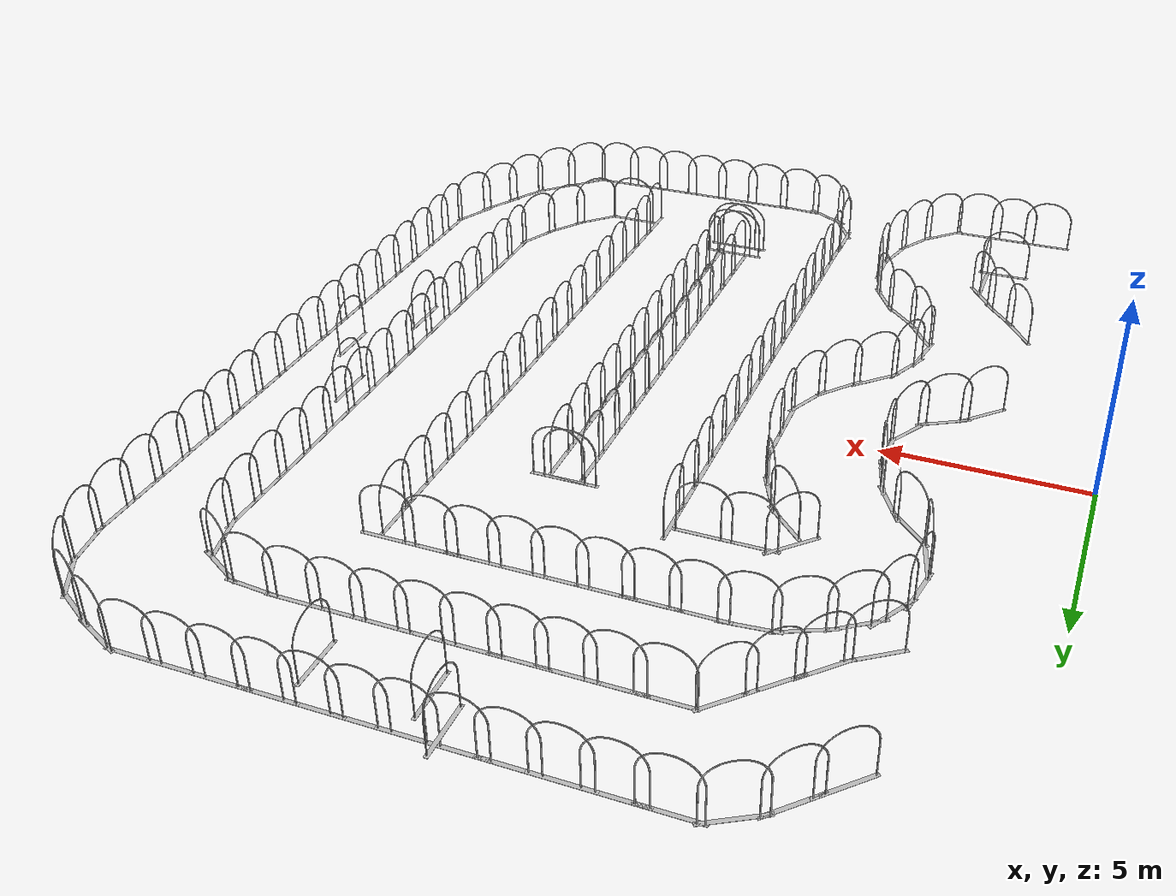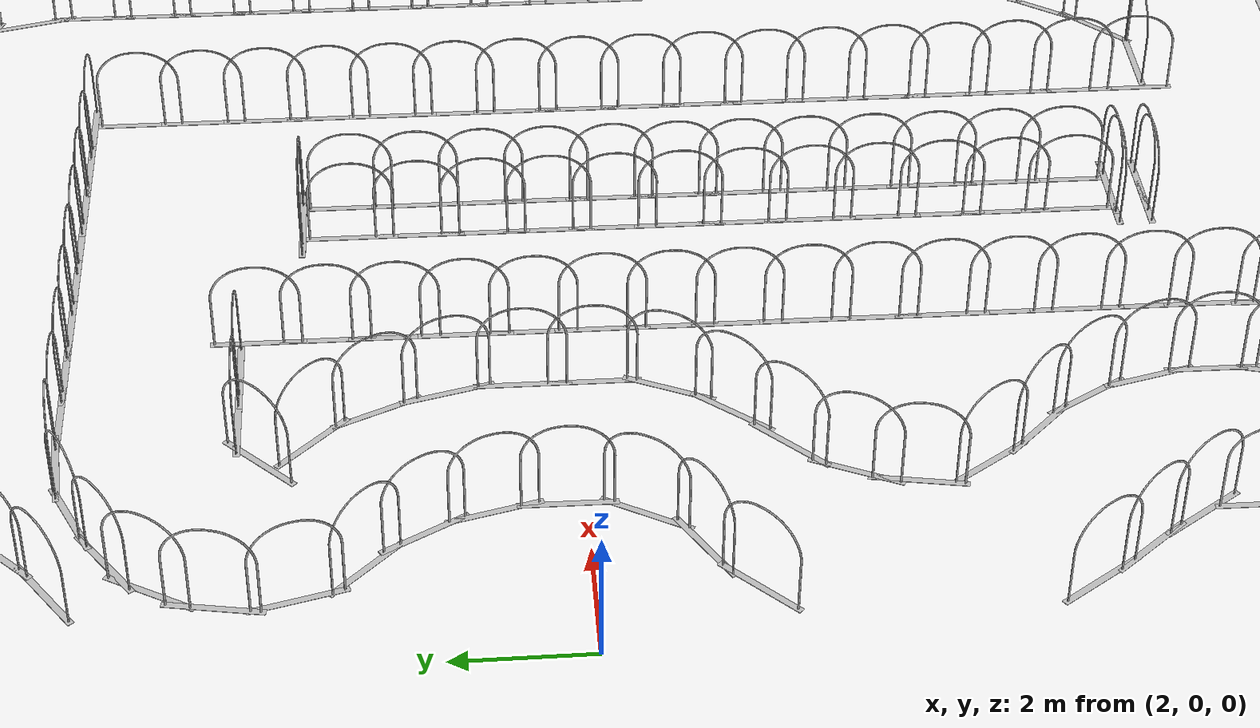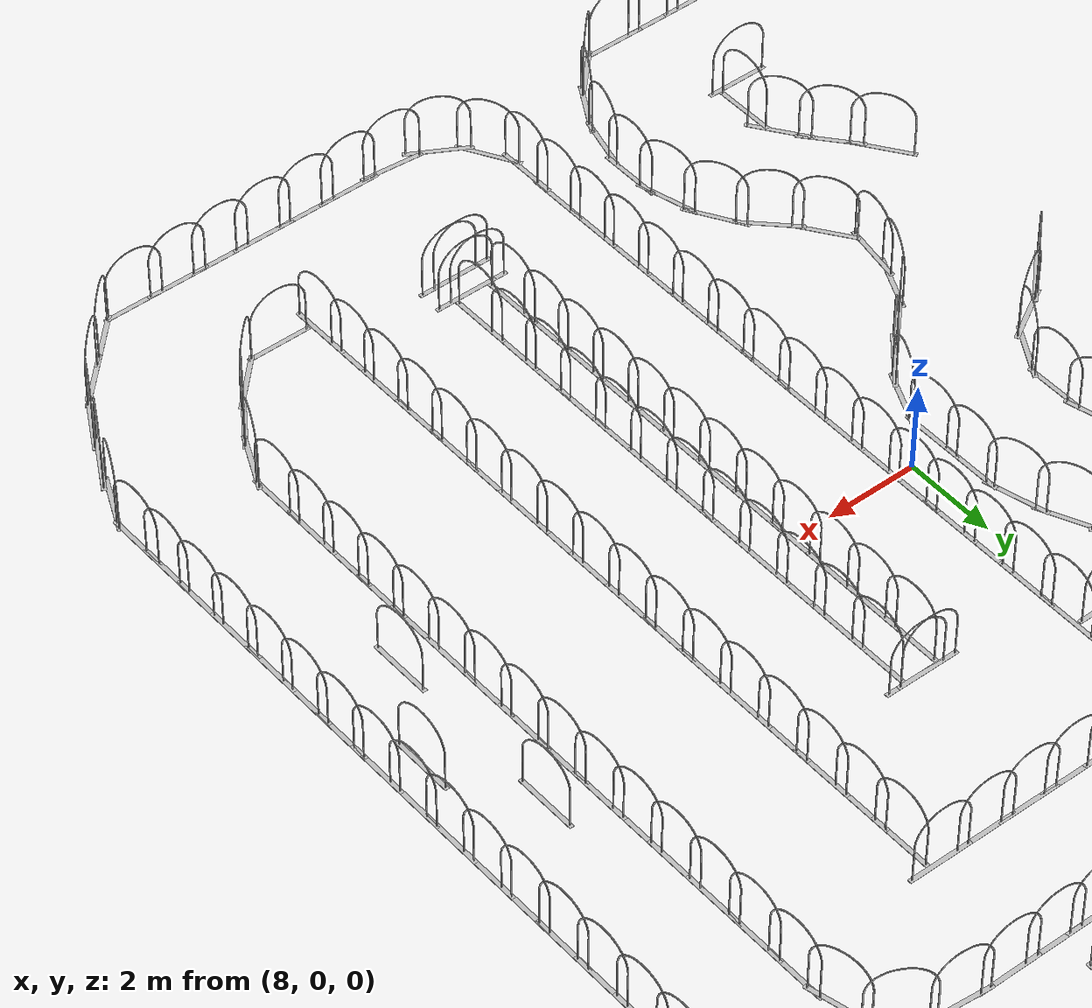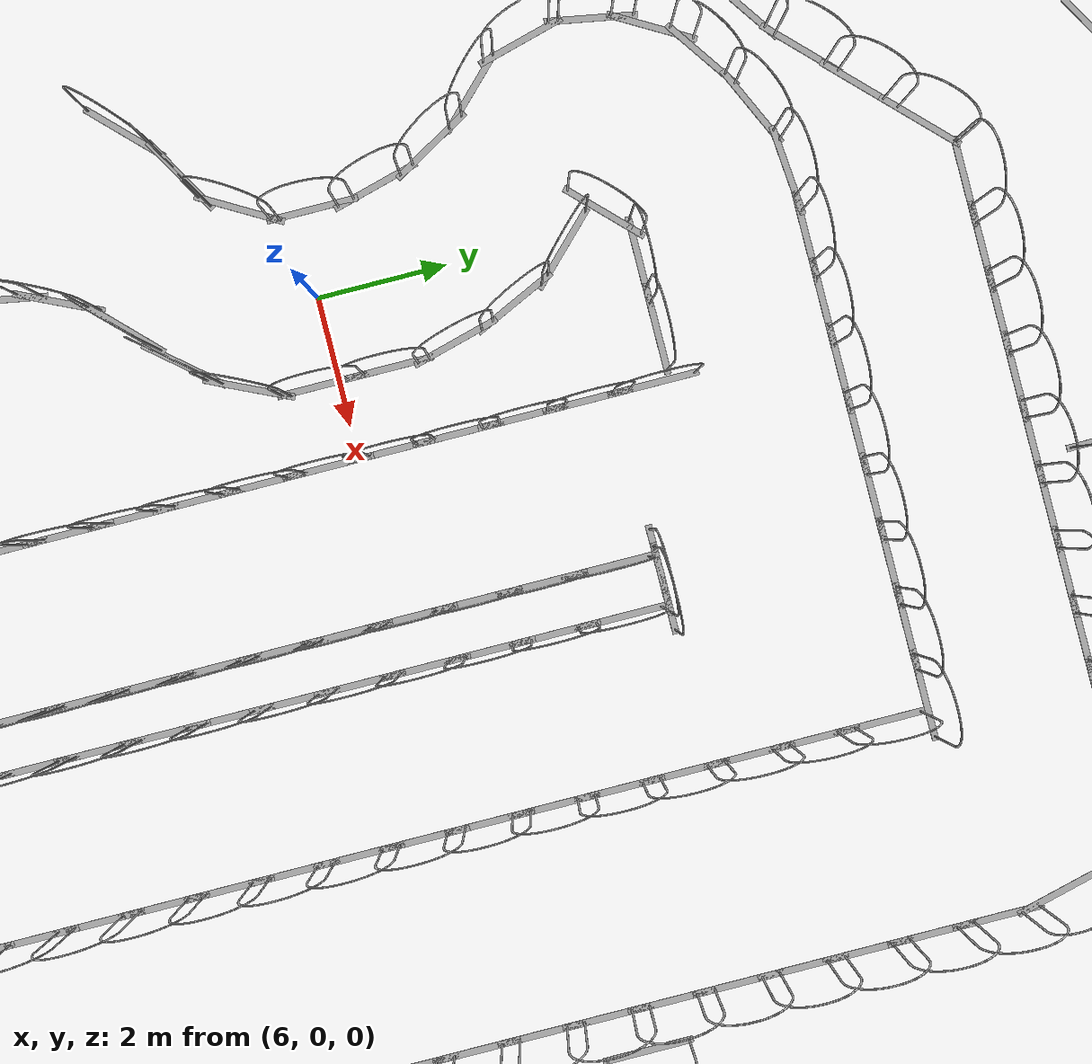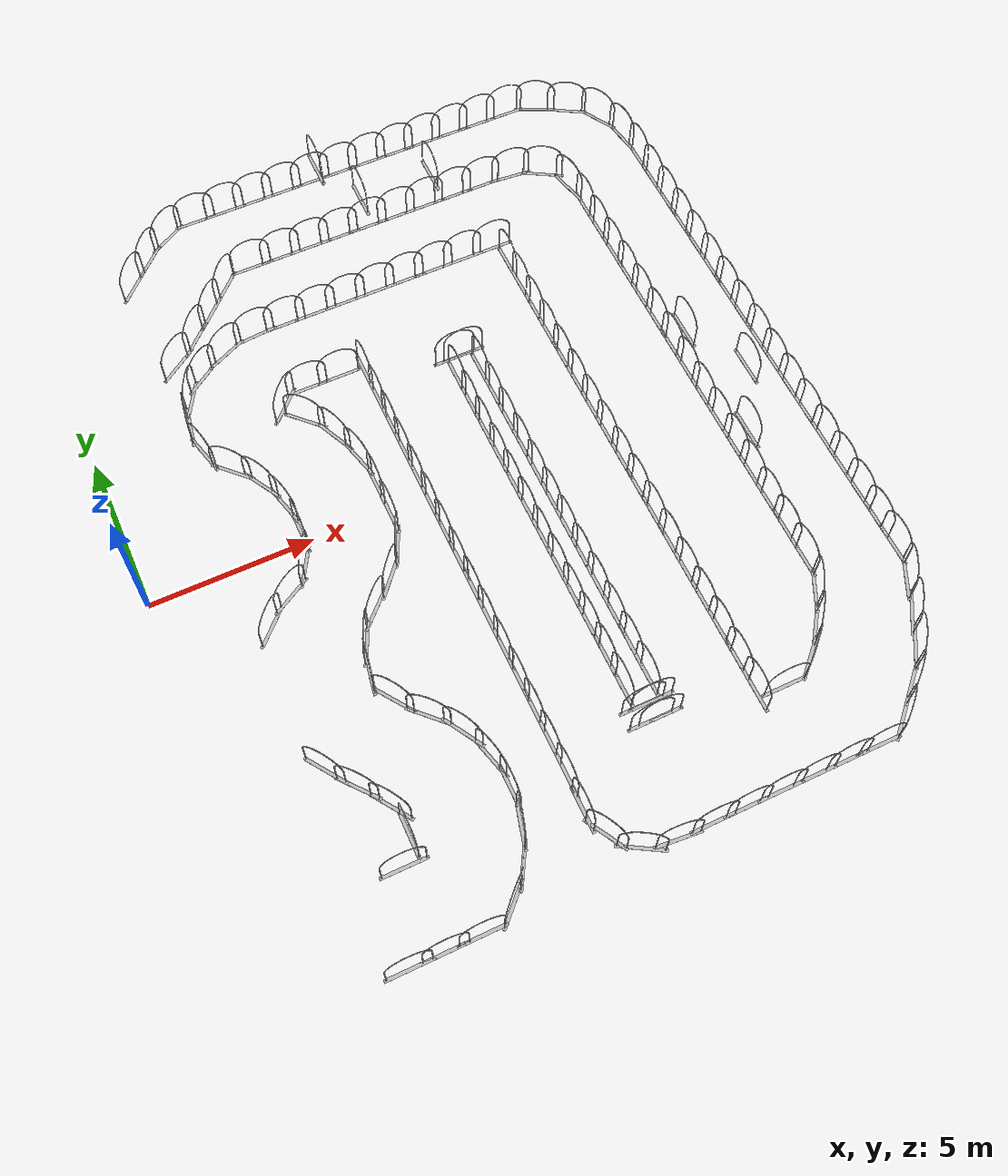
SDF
<sdf version="1.6">
 <world name="racetrack_world">
  <include>
   <name>model_2</name>
   <uri>../models/straw_bale/model.sdf</uri>
   <pose>3.1374999999999993 10.65 0.175 0 0 0.7853981633974483</pose>
  </include>
  <include>
   <name>model_3</name>
   <uri>../models/straw_bale/model.sdf</uri>
   <pose>3.862499999999997 11.375 0.175 0 0 0.7853981633974483</pose>
  </include>
  <include>
   <name>model_4</name>
   <uri>../models/straw_bale/model.sdf</uri>
   <pose>4.712499999999999 12.025 0.175 0 0 0.5235987755982988</pose>
  </include>
  <include>
   <name>model_5</name>
   <uri>../models/straw_bale/model.sdf</uri>
   <pose>5.762499999999999 12.3 0.175 0 0 -0.0</pose>
  </include>
  <include>
   <name>model_6</name>
   <uri>../models/straw_bale/model.sdf</uri>
   <pose>6.762499999999999 12.3 0.175 0 0 -0.0</pose>
  </include>
  <include>
   <name>model_7</name>
   <uri>../models/straw_bale/model.sdf</uri>
   <pose>7.762499999999999 12.3 0.175 0 0 -0.0</pose>
  </include>
  <include>
   <name>model_8</name>
   <uri>../models/straw_bale/model.sdf</uri>
   <pose>8.7625 12.3 0.175 0 0 -0.0</pose>
  </include>
  <include>
   <name>model_9</name>
   <uri>../models/straw_bale/model.sdf</uri>
   <pose>9.7625 12.3 0.175 0 0 -0.0</pose>
  </include>
  <include>
   <name>model_10</name>
   <uri>../models/straw_bale/model.sdf</uri>
   <pose>10.7625 12.3 0.175 0 0 -0.0</pose>
  </include>
  <include>
   <name>model_11</name>
   <uri>../models/straw_bale/model.sdf</uri>
   <pose>11.7625 12.3 0.175 0 0 -0.0</pose>
  </include>
  <include>
   <name>model_12</name>
   <uri>../models/straw_bale/model.sdf</uri>
   <pose>12.762499999999996 12.3 0.175 0 0 -0.0</pose>
  </include>
  <include>
   <name>model_13</name>
   <uri>../models/straw_bale/model.sdf</uri>
   <pose>13.762499999999996 12.3 0.175 0 0 -0.0</pose>
  </include>
  <include>
   <name>model_14</name>
   <uri>../models/straw_bale/model.sdf</uri>
   <pose>14.762499999999996 12.3 0.175 0 0 -0.0</pose>
  </include>
  <include>
   <name>model_15</name>
   <uri>../models/straw_bale/model.sdf</uri>
   <pose>15.762499999999996 12.3 0.175 0 0 -0.0</pose>
  </include>
  <include>
   <name>model_16</name>
   <uri>../models/straw_bale/model.sdf</uri>
   <pose>16.762499999999996 12.3 0.175 0 0 -0.0</pose>
  </include>
  <include>
   <name>model_17</name>
   <uri>../models/straw_bale/model.sdf</uri>
   <pose>17.8375 12.075 0.175 0 0 -0.4363323129985824</pose>
  </include>
  <include>
   <name>model_18</name>
   <uri>../models/straw_bale/model.sdf</uri>
   <pose>18.762500000000003 11.575000000000001 0.175 0 0 -0.5235987755982988</pose>
  </include>
  <include>
   <name>model_19</name>
   <uri>../models/straw_bale/model.sdf</uri>
   <pose>19.5625 10.8 0.175 0 0 -1.0471975511965976</pose>
  </include>
  <include>
   <name>model_21</name>
   <uri>../models/straw_bale/model.sdf</uri>
   <pose>19.9375 9.775 0.175 0 0 -1.3962634015954636</pose>
  </include>
  <include>
   <name>model_22</name>
   <uri>../models/straw_bale/model.sdf</uri>
   <pose>20.0375 8.725 0.175 0 0 -1.5707963267948966</pose>
  </include>
  <include>
   <name>model_23</name>
   <uri>../models/straw_bale/model.sdf</uri>
   <pose>20.0375 7.699999999999999 0.175 0 0 -1.5707963267948966</pose>
  </include>
  <include>
   <name>model_24</name>
   <uri>../models/straw_bale/model.sdf</uri>
   <pose>20.0375 6.699999999999999 0.175 0 0 -1.5707963267948966</pose>
  </include>
  <include>
   <name>model_25</name>
   <uri>../models/straw_bale/model.sdf</uri>
   <pose>20.0375 5.699999999999999 0.175 0 0 -1.5707963267948966</pose>
  </include>
  <include>
   <name>model_26</name>
   <uri>../models/straw_bale/model.sdf</uri>
   <pose>20.0375 4.699999999999999 0.175 0 0 -1.5707963267948966</pose>
  </include>
  <include>
   <name>model_27</name>
   <uri>../models/straw_bale/model.sdf</uri>
   <pose>20.0375 3.6999999999999993 0.175 0 0 -1.5707963267948966</pose>
  </include>
  <include>
   <name>model_28</name>
   <uri>../models/straw_bale/model.sdf</uri>
   <pose>20.0375 2.6999999999999993 0.175 0 0 -1.5707963267948966</pose>
  </include>
  <include>
   <name>model_29</name>
   <uri>../models/straw_bale/model.sdf</uri>
   <pose>20.0375 1.6999999999999993 0.175 0 0 -1.5707963267948966</pose>
  </include>
  <include>
   <name>model_30</name>
   <uri>../models/straw_bale/model.sdf</uri>
   <pose>20.0375 0.6999999999999993 0.175 0 0 -1.5707963267948966</pose>
  </include>
  <include>
   <name>model_31</name>
   <uri>../models/straw_bale/model.sdf</uri>
   <pose>20.0375 -0.3000000000000007 0.175 0 0 -1.5707963267948966</pose>
  </include>
  <include>
   <name>model_32</name>
   <uri>../models/straw_bale/model.sdf</uri>
   <pose>20.0375 -1.3000000000000007 0.175 0 0 -1.5707963267948966</pose>
  </include>
  <include>
   <name>model_33</name>
   <uri>../models/straw_bale/model.sdf</uri>
   <pose>20.0375 -2.3000000000000007 0.175 0 0 -1.5707963267948966</pose>
  </include>
  <include>
   <name>model_34</name>
   <uri>../models/straw_bale/model.sdf</uri>
   <pose>20.0375 -3.3000000000000007 0.175 0 0 -1.5707963267948966</pose>
  </include>
  <include>
   <name>model_35</name>
   <uri>../models/straw_bale/model.sdf</uri>
   <pose>20.0375 -4.300000000000001 0.175 0 0 -1.5707963267948966</pose>
  </include>
  <include>
   <name>model_36</name>
   <uri>../models/straw_bale/model.sdf</uri>
   <pose>20.0375 -5.300000000000001 0.175 0 0 -1.5707963267948966</pose>
  </include>
  <include>
   <name>model_37</name>
   <uri>../models/straw_bale/model.sdf</uri>
   <pose>20.0375 -6.300000000000001 0.175 0 0 -1.5707963267948966</pose>
  </include>
  <include>
   <name>model_38</name>
   <uri>../models/straw_bale/model.sdf</uri>
   <pose>20.0375 -7.199999999999999 0.175 0 0 -1.5707963267948966</pose>
  </include>
  <include>
   <name>model_39</name>
   <uri>../models/straw_bale/model.sdf</uri>
   <pose>16.4625 -12.2 0.175 0 0 3.141592653589793</pose>
  </include>
  <include>
   <name>model_40</name>
   <uri>../models/straw_bale/model.sdf</uri>
   <pose>19.8125 -8.275000000000002 0.175 0 0 -2.007128639793479</pose>
  </include>
  <include>
   <name>model_41</name>
   <uri>../models/straw_bale/model.sdf</uri>
   <pose>17.487499999999997 -11.8 0.175 0 0 3.9269908169872414</pose>
  </include>
  <include>
   <name>model_42</name>
   <uri>../models/straw_bale/model.sdf</uri>
   <pose>18.237499999999997 -11.05 0.175 0 0 3.9269908169872414</pose>
  </include>
  <include>
   <name>model_43</name>
   <uri>../models/straw_bale/model.sdf</uri>
   <pose>18.9125 -10.175 0.175 0 0 -2.0943951023931953</pose>
  </include>
  <include>
   <name>model_44</name>
   <uri>../models/straw_bale/model.sdf</uri>
   <pose>19.387500000000003 -9.25 0.175 0 0 -2.0943951023931953</pose>
  </include>
  <include>
   <name>model_45</name>
   <uri>../models/straw_bale/model.sdf</uri>
   <pose>17.487499999999997 7.550000000000001 0.175 0 0 -1.5707963267948966</pose>
  </include>
  <include>
   <name>model_46</name>
   <uri>../models/straw_bale/model.sdf</uri>
   <pose>17.487499999999997 6.550000000000001 0.175 0 0 -1.5707963267948966</pose>
  </include>
  <include>
   <name>model_47</name>
   <uri>../models/straw_bale/model.sdf</uri>
   <pose>17.487499999999997 5.550000000000001 0.175 0 0 -1.5707963267948966</pose>
  </include>
  <include>
   <name>model_48</name>
   <uri>../models/straw_bale/model.sdf</uri>
   <pose>17.487499999999997 4.550000000000001 0.175 0 0 -1.5707963267948966</pose>
  </include>
  <include>
   <name>model_49</name>
   <uri>../models/straw_bale/model.sdf</uri>
   <pose>17.487499999999997 3.5500000000000007 0.175 0 0 -1.5707963267948966</pose>
  </include>
  <include>
   <name>model_50</name>
   <uri>../models/straw_bale/model.sdf</uri>
   <pose>17.487499999999997 2.5500000000000007 0.175 0 0 -1.5707963267948966</pose>
  </include>
  <include>
   <name>model_51</name>
   <uri>../models/straw_bale/model.sdf</uri>
   <pose>17.487499999999997 1.5500000000000007 0.175 0 0 -1.5707963267948966</pose>
  </include>
  <include>
   <name>model_52</name>
   <uri>../models/straw_bale/model.sdf</uri>
   <pose>17.487499999999997 0.5500000000000007 0.175 0 0 -1.5707963267948966</pose>
  </include>
  <include>
   <name>model_53</name>
   <uri>../models/straw_bale/model.sdf</uri>
   <pose>17.487499999999997 -0.4499999999999993 0.175 0 0 -1.5707963267948966</pose>
  </include>
  <include>
   <name>model_54</name>
   <uri>../models/straw_bale/model.sdf</uri>
   <pose>17.487499999999997 -1.4499999999999993 0.175 0 0 -1.5707963267948966</pose>
  </include>
  <include>
   <name>model_55</name>
   <uri>../models/straw_bale/model.sdf</uri>
   <pose>17.487499999999997 -2.4499999999999993 0.175 0 0 -1.5707963267948966</pose>
  </include>
  <include>
   <name>model_56</name>
   <uri>../models/straw_bale/model.sdf</uri>
   <pose>17.487499999999997 -3.4499999999999993 0.175 0 0 -1.5707963267948966</pose>
  </include>
  <include>
   <name>model_57</name>
   <uri>../models/straw_bale/model.sdf</uri>
   <pose>17.487499999999997 -4.449999999999999 0.175 0 0 -1.5707963267948966</pose>
  </include>
  <include>
   <name>model_58</name>
   <uri>../models/straw_bale/model.sdf</uri>
   <pose>17.487499999999997 -5.449999999999999 0.175 0 0 -1.5707963267948966</pose>
  </include>
  <include>
   <name>model_59</name>
   <uri>../models/straw_bale/model.sdf</uri>
   <pose>17.487499999999997 -6.449999999999999 0.175 0 0 -1.5707963267948966</pose>
  </include>
  <include>
   <name>model_60</name>
   <uri>../models/straw_bale/model.sdf</uri>
   <pose>12.762499999999996 9.8 0.175 0 0 -0.0</pose>
  </include>
  <include>
   <name>model_61</name>
   <uri>../models/straw_bale/model.sdf</uri>
   <pose>13.762499999999996 9.8 0.175 0 0 -0.0</pose>
  </include>
  <include>
   <name>model_62</name>
   <uri>../models/straw_bale/model.sdf</uri>
   <pose>14.762499999999996 9.8 0.175 0 0 -0.0</pose>
  </include>
  <include>
   <name>model_63</name>
   <uri>../models/straw_bale/model.sdf</uri>
   <pose>15.8125 9.75 0.175 0 0 -0.08726646259971647</pose>
  </include>
  <include>
   <name>model_64</name>
   <uri>../models/straw_bale/model.sdf</uri>
   <pose>11.7625 9.8 0.175 0 0 -0.0</pose>
  </include>
  <include>
   <name>model_65</name>
   <uri>../models/straw_bale/model.sdf</uri>
   <pose>10.7625 9.8 0.175 0 0 -0.0</pose>
  </include>
  <include>
   <name>model_66</name>
   <uri>../models/straw_bale/model.sdf</uri>
   <pose>9.7625 9.8 0.175 0 0 -0.0</pose>
  </include>
  <include>
   <name>model_67</name>
   <uri>../models/straw_bale/model.sdf</uri>
   <pose>8.7625 9.8 0.175 0 0 -0.0</pose>
  </include>
  <include>
   <name>model_68</name>
   <uri>../models/straw_bale/model.sdf</uri>
   <pose>7.762499999999999 9.8 0.175 0 0 -0.0</pose>
  </include>
  <include>
   <name>model_69</name>
   <uri>../models/straw_bale/model.sdf</uri>
   <pose>6.762499999999999 9.8 0.175 0 0 -0.0</pose>
  </include>
  <include>
   <name>model_70</name>
   <uri>../models/straw_bale/model.sdf</uri>
   <pose>16.8375 9.4 0.175 0 0 -0.5235987755982988</pose>
  </include>
  <include>
   <name>model_71</name>
   <uri>../models/straw_bale/model.sdf</uri>
   <pose>17.362499999999997 8.525 0.175 0 0 -1.3264502315156905</pose>
  </include>
  <include>
   <name>model_72</name>
   <uri>../models/straw_bale/model.sdf</uri>
   <pose>15.012499999999996 -9.675 0.175 0 0 3.141592653589793</pose>
  </include>
  <include>
   <name>model_73</name>
   <uri>../models/straw_bale/model.sdf</uri>
   <pose>16.0875 -9.25 0.175 0 0 3.9269908169872414</pose>
  </include>
  <include>
   <name>model_74</name>
   <uri>../models/straw_bale/model.sdf</uri>
   <pose>16.737499999999997 -8.45 0.175 0 0 4.101523742186674</pose>
  </include>
  <include>
   <name>model_75</name>
   <uri>../models/straw_bale/model.sdf</uri>
   <pose>17.262499999999996 -7.525000000000002 0.175 0 0 -2.007128639793479</pose>
  </include>
  <include>
   <name>model_76</name>
   <uri>../models/straw_bale/model.sdf</uri>
   <pose>14.237499999999997 -9.425 0.175 0 0 1.5707963267948966</pose>
  </include>
  <include>
   <name>model_77</name>
   <uri>../models/straw_bale/model.sdf</uri>
   <pose>14.237499999999997 -8.45 0.175 0 0 1.5707963267948966</pose>
  </include>
  <include>
   <name>model_78</name>
   <uri>../models/straw_bale/model.sdf</uri>
   <pose>14.237499999999997 -7.449999999999999 0.175 0 0 1.5707963267948966</pose>
  </include>
  <include>
   <name>model_79</name>
   <uri>../models/straw_bale/model.sdf</uri>
   <pose>14.237499999999997 -6.449999999999999 0.175 0 0 1.5707963267948966</pose>
  </include>
  <include>
   <name>model_80</name>
   <uri>../models/straw_bale/model.sdf</uri>
   <pose>14.237499999999997 -5.449999999999999 0.175 0 0 1.5707963267948966</pose>
  </include>
  <include>
   <name>model_81</name>
   <uri>../models/straw_bale/model.sdf</uri>
   <pose>14.237499999999997 -4.449999999999999 0.175 0 0 1.5707963267948966</pose>
  </include>
  <include>
   <name>model_82</name>
   <uri>../models/straw_bale/model.sdf</uri>
   <pose>14.237499999999997 -3.4499999999999993 0.175 0 0 1.5707963267948966</pose>
  </include>
  <include>
   <name>model_83</name>
   <uri>../models/straw_bale/model.sdf</uri>
   <pose>14.237499999999997 -2.4499999999999993 0.175 0 0 1.5707963267948966</pose>
  </include>
  <include>
   <name>model_84</name>
   <uri>../models/straw_bale/model.sdf</uri>
   <pose>14.237499999999997 -1.4499999999999993 0.175 0 0 1.5707963267948966</pose>
  </include>
  <include>
   <name>model_85</name>
   <uri>../models/straw_bale/model.sdf</uri>
   <pose>14.237499999999997 -0.4499999999999993 0.175 0 0 1.5707963267948966</pose>
  </include>
  <include>
   <name>model_86</name>
   <uri>../models/straw_bale/model.sdf</uri>
   <pose>14.237499999999997 0.5500000000000007 0.175 0 0 1.5707963267948966</pose>
  </include>
  <include>
   <name>model_87</name>
   <uri>../models/straw_bale/model.sdf</uri>
   <pose>14.237499999999997 1.5500000000000007 0.175 0 0 1.5707963267948966</pose>
  </include>
  <include>
   <name>model_88</name>
   <uri>../models/straw_bale/model.sdf</uri>
   <pose>14.237499999999997 2.5500000000000007 0.175 0 0 1.5707963267948966</pose>
  </include>
  <include>
   <name>model_89</name>
   <uri>../models/straw_bale/model.sdf</uri>
   <pose>14.237499999999997 3.5500000000000007 0.175 0 0 1.5707963267948966</pose>
  </include>
  <include>
   <name>model_90</name>
   <uri>../models/straw_bale/model.sdf</uri>
   <pose>14.237499999999997 4.550000000000001 0.175 0 0 1.5707963267948966</pose>
  </include>
  <include>
   <name>model_91</name>
   <uri>../models/straw_bale/model.sdf</uri>
   <pose>14.237499999999997 5.550000000000001 0.175 0 0 1.5707963267948966</pose>
  </include>
  <include>
   <name>model_92</name>
   <uri>../models/straw_bale/model.sdf</uri>
   <pose>14.237499999999997 6.550000000000001 0.175 0 0 1.5707963267948966</pose>
  </include>
  <include>
   <name>model_93</name>
   <uri>../models/straw_bale/model.sdf</uri>
   <pose>14.012499999999996 7.300000000000001 0.175 0 0 3.141592653589793</pose>
  </include>
  <include>
   <name>model_94</name>
   <uri>../models/straw_bale/model.sdf</uri>
   <pose>12.987499999999997 7.300000000000001 0.175 0 0 3.141592653589793</pose>
  </include>
  <include>
   <name>model_95</name>
   <uri>../models/straw_bale/model.sdf</uri>
   <pose>11.987499999999997 7.300000000000001 0.175 0 0 3.141592653589793</pose>
  </include>
  <include>
   <name>model_96</name>
   <uri>../models/straw_bale/model.sdf</uri>
   <pose>10.987499999999997 7.300000000000001 0.175 0 0 3.141592653589793</pose>
  </include>
  <include>
   <name>model_97</name>
   <uri>../models/straw_bale/model.sdf</uri>
   <pose>9.987499999999997 7.300000000000001 0.175 0 0 3.141592653589793</pose>
  </include>
  <include>
   <name>model_98</name>
   <uri>../models/straw_bale/model.sdf</uri>
   <pose>8.987499999999997 7.300000000000001 0.175 0 0 3.141592653589793</pose>
  </include>
  <include>
   <name>model_99</name>
   <uri>../models/straw_bale/model.sdf</uri>
   <pose>7.987499999999997 7.300000000000001 0.175 0 0 3.141592653589793</pose>
  </include>
  <include>
   <name>model_100</name>
   <uri>../models/straw_bale/model.sdf</uri>
   <pose>5.712499999999999 9.375 0.175 0 0 0.7853981633974483</pose>
  </include>
  <include>
   <name>model_101</name>
   <uri>../models/straw_bale/model.sdf</uri>
   <pose>4.987499999999997 8.65 0.175 0 0 0.7853981633974483</pose>
  </include>
  <include>
   <name>model_102</name>
   <uri>../models/straw_bale/model.sdf</uri>
   <pose>4.237499999999997 7.925000000000001 0.175 0 0 0.7853981633974483</pose>
  </include>
  <include>
   <name>model_106</name>
   <uri>../models/straw_bale/model.sdf</uri>
   <pose>3.412499999999998 7.225 0.175 0 0 0.6108652381980153</pose>
  </include>
  <include>
   <name>model_107</name>
   <uri>../models/straw_bale/model.sdf</uri>
   <pose>11.7625 -0.8000000000000007 0.175 0 0 1.5707963267948966</pose>
  </include>
  <include>
   <name>model_108</name>
   <uri>../models/straw_bale/model.sdf</uri>
   <pose>10.987499999999997 -0.8000000000000007 0.175 0 0 -1.5707963267948966</pose>
  </include>
  <include>
   <name>model_109</name>
   <uri>../models/straw_bale/model.sdf</uri>
   <pose>8.5125 -0.4499999999999993 0.175 0 0 -1.5707963267948966</pose>
  </include>
  <include>
   <name>model_110</name>
   <uri>../models/straw_bale/model.sdf</uri>
   <pose>10.987499999999997 0.1999999999999993 0.175 0 0 -1.5707963267948966</pose>
  </include>
  <include>
   <name>model_111</name>
   <uri>../models/straw_bale/model.sdf</uri>
   <pose>8.5125 4.550000000000001 0.175 0 0 -1.5707963267948966</pose>
  </include>
  <include>
   <name>model_112</name>
   <uri>../models/straw_bale/model.sdf</uri>
   <pose>8.5125 3.5500000000000007 0.175 0 0 -1.5707963267948966</pose>
  </include>
  <include>
   <name>model_113</name>
   <uri>../models/straw_bale/model.sdf</uri>
   <pose>8.5125 2.5500000000000007 0.175 0 0 -1.5707963267948966</pose>
  </include>
  <include>
   <name>model_114</name>
   <uri>../models/straw_bale/model.sdf</uri>
   <pose>8.5125 1.5500000000000007 0.175 0 0 -1.5707963267948966</pose>
  </include>
  <include>
   <name>model_115</name>
   <uri>../models/straw_bale/model.sdf</uri>
   <pose>8.5125 0.5500000000000007 0.175 0 0 -1.5707963267948966</pose>
  </include>
  <include>
   <name>model_116</name>
   <uri>../models/straw_bale/model.sdf</uri>
   <pose>8.5125 -1.4499999999999993 0.175 0 0 -1.5707963267948966</pose>
  </include>
  <include>
   <name>model_117</name>
   <uri>../models/straw_bale/model.sdf</uri>
   <pose>8.5125 -2.4499999999999993 0.175 0 0 -1.5707963267948966</pose>
  </include>
  <include>
   <name>model_118</name>
   <uri>../models/straw_bale/model.sdf</uri>
   <pose>8.5125 -3.4499999999999993 0.175 0 0 -1.5707963267948966</pose>
  </include>
  <include>
   <name>model_119</name>
   <uri>../models/straw_bale/model.sdf</uri>
   <pose>8.5125 -4.449999999999999 0.175 0 0 -1.5707963267948966</pose>
  </include>
  <include>
   <name>model_120</name>
   <uri>../models/straw_bale/model.sdf</uri>
   <pose>8.5125 -5.449999999999999 0.175 0 0 -1.5707963267948966</pose>
  </include>
  <include>
   <name>model_121</name>
   <uri>../models/straw_bale/model.sdf</uri>
   <pose>8.5125 -6.449999999999999 0.175 0 0 -1.5707963267948966</pose>
  </include>
  <include>
   <name>model_122</name>
   <uri>../models/straw_bale/model.sdf</uri>
   <pose>8.5125 -7.449999999999999 0.175 0 0 -1.5707963267948966</pose>
  </include>
  <include>
   <name>model_123</name>
   <uri>../models/straw_bale/model.sdf</uri>
   <pose>8.5125 -8.45 0.175 0 0 -1.5707963267948966</pose>
  </include>
  <include>
   <name>model_124</name>
   <uri>../models/straw_bale/model.sdf</uri>
   <pose>8.5125 -9.45 0.175 0 0 -1.5707963267948966</pose>
  </include>
  <include>
   <name>model_125</name>
   <uri>../models/straw_bale/model.sdf</uri>
   <pose>8.487499999999997 -10.45 0.175 0 0 -1.5707963267948966</pose>
  </include>
  <include>
   <name>model_126</name>
   <uri>../models/straw_bale/model.sdf</uri>
   <pose>15.462499999999999 -12.2 0.175 0 0 3.141592653589793</pose>
  </include>
  <include>
   <name>model_127</name>
   <uri>../models/straw_bale/model.sdf</uri>
   <pose>14.462499999999999 -12.2 0.175 0 0 3.141592653589793</pose>
  </include>
  <include>
   <name>model_128</name>
   <uri>../models/straw_bale/model.sdf</uri>
   <pose>13.462499999999999 -12.2 0.175 0 0 3.141592653589793</pose>
  </include>
  <include>
   <name>model_129</name>
   <uri>../models/straw_bale/model.sdf</uri>
   <pose>12.4375 -12.2 0.175 0 0 3.141592653589793</pose>
  </include>
  <include>
   <name>model_130</name>
   <uri>../models/straw_bale/model.sdf</uri>
   <pose>11.4375 -12.2 0.175 0 0 3.141592653589793</pose>
  </include>
  <include>
   <name>model_131</name>
   <uri>../models/straw_bale/model.sdf</uri>
   <pose>10.3875 -12.2 0.175 0 0 3.0543261909900767</pose>
  </include>
  <include>
   <name>model_132</name>
   <uri>../models/straw_bale/model.sdf</uri>
   <pose>9.412499999999998 -11.999999999999996 0.175 0 0 2.6179938779914944</pose>
  </include>
  <include>
   <name>model_133</name>
   <uri>../models/straw_bale/model.sdf</uri>
   <pose>8.737499999999997 -11.3 0.175 0 0 2.0943951023931953</pose>
  </include>
  <include>
   <name>model_134</name>
   <uri>../models/straw_bale/model.sdf</uri>
   <pose>10.987499999999997 -1.8000000000000007 0.175 0 0 -1.5707963267948966</pose>
  </include>
  <include>
   <name>model_135</name>
   <uri>../models/straw_bale/model.sdf</uri>
   <pose>10.987499999999997 -2.8000000000000007 0.175 0 0 -1.5707963267948966</pose>
  </include>
  <include>
   <name>model_136</name>
   <uri>../models/straw_bale/model.sdf</uri>
   <pose>10.987499999999997 -3.8000000000000007 0.175 0 0 -1.5707963267948966</pose>
  </include>
  <include>
   <name>model_137</name>
   <uri>../models/straw_bale/model.sdf</uri>
   <pose>10.987499999999997 -4.800000000000001 0.175 0 0 -1.5707963267948966</pose>
  </include>
  <include>
   <name>model_138</name>
   <uri>../models/straw_bale/model.sdf</uri>
   <pose>10.987499999999997 -5.800000000000001 0.175 0 0 -1.5707963267948966</pose>
  </include>
  <include>
   <name>model_139</name>
   <uri>../models/straw_bale/model.sdf</uri>
   <pose>10.987499999999997 -6.800000000000001 0.175 0 0 -1.5707963267948966</pose>
  </include>
  <include>
   <name>model_140</name>
   <uri>../models/straw_bale/model.sdf</uri>
   <pose>10.987499999999997 -7.775000000000002 0.175 0 0 -1.5707963267948966</pose>
  </include>
  <include>
   <name>model_141</name>
   <uri>../models/straw_bale/model.sdf</uri>
   <pose>11.7625 -1.8000000000000007 0.175 0 0 -1.5707963267948966</pose>
  </include>
  <include>
   <name>model_142</name>
   <uri>../models/straw_bale/model.sdf</uri>
   <pose>11.7625 -3.8000000000000007 0.175 0 0 -1.5707963267948966</pose>
  </include>
  <include>
   <name>model_143</name>
   <uri>../models/straw_bale/model.sdf</uri>
   <pose>11.7625 -2.8000000000000007 0.175 0 0 -1.5707963267948966</pose>
  </include>
  <include>
   <name>model_144</name>
   <uri>../models/straw_bale/model.sdf</uri>
   <pose>11.7625 -4.800000000000001 0.175 0 0 -1.5707963267948966</pose>
  </include>
  <include>
   <name>model_145</name>
   <uri>../models/straw_bale/model.sdf</uri>
   <pose>11.7625 -5.800000000000001 0.175 0 0 -1.5707963267948966</pose>
  </include>
  <include>
   <name>model_146</name>
   <uri>../models/straw_bale/model.sdf</uri>
   <pose>11.7625 -6.800000000000001 0.175 0 0 -1.5707963267948966</pose>
  </include>
  <include>
   <name>model_147</name>
   <uri>../models/straw_bale/model.sdf</uri>
   <pose>11.7625 -7.775000000000002 0.175 0 0 -1.5707963267948966</pose>
  </include>
  <include>
   <name>model_148</name>
   <uri>../models/straw_bale/model.sdf</uri>
   <pose>11.7625 0.1999999999999993 0.175 0 0 -1.5707963267948966</pose>
  </include>
  <include>
   <name>model_149</name>
   <uri>../models/straw_bale/model.sdf</uri>
   <pose>11.237499999999997 -8.525000000000002 0.175 0 0 3.141592653589793</pose>
  </include>
  <include>
   <name>model_150</name>
   <uri>../models/straw_bale/model.sdf</uri>
   <pose>11.5125 -8.525000000000002 0.175 0 0 3.141592653589793</pose>
  </include>
  <include>
   <name>model_151</name>
   <uri>../models/straw_bale/model.sdf</uri>
   <pose>10.987499999999997 1.1999999999999993 0.175 0 0 -1.5707963267948966</pose>
  </include>
  <include>
   <name>model_152</name>
   <uri>../models/straw_bale/model.sdf</uri>
   <pose>11.7625 1.1999999999999993 0.175 0 0 -1.5707963267948966</pose>
  </include>
  <include>
   <name>model_153</name>
   <uri>../models/straw_bale/model.sdf</uri>
   <pose>11.7625 2.1999999999999993 0.175 0 0 -1.5707963267948966</pose>
  </include>
  <include>
   <name>model_154</name>
   <uri>../models/straw_bale/model.sdf</uri>
   <pose>10.987499999999997 2.1999999999999993 0.175 0 0 -1.5707963267948966</pose>
  </include>
  <include>
   <name>model_155</name>
   <uri>../models/straw_bale/model.sdf</uri>
   <pose>11.5125 3.9499999999999993 0.175 0 0 3.141592653589793</pose>
  </include>
  <include>
   <name>model_156</name>
   <uri>../models/straw_bale/model.sdf</uri>
   <pose>11.237499999999997 3.9499999999999993 0.175 0 0 3.141592653589793</pose>
  </include>
  <include>
   <name>model_157</name>
   <uri>../models/straw_bale/model.sdf</uri>
   <pose>10.987499999999997 3.1999999999999993 0.175 0 0 -1.5707963267948966</pose>
  </include>
  <include>
   <name>model_158</name>
   <uri>../models/straw_bale/model.sdf</uri>
   <pose>11.7625 3.1999999999999993 0.175 0 0 -1.5707963267948966</pose>
  </include>
  <include>
   <name>model_159</name>
   <uri>../models/straw_bale/model.sdf</uri>
   <pose>11.5125 -9.025000000000002 0.175 0 0 3.141592653589793</pose>
  </include>
  <include>
   <name>model_160</name>
   <uri>../models/straw_bale/model.sdf</uri>
   <pose>11.237499999999997 -9.025000000000002 0.175 0 0 3.141592653589793</pose>
  </include>
  <include>
   <name>model_161</name>
   <uri>../models/straw_bale/model.sdf</uri>
   <pose>4.737499999999997 0.2749999999999986 0.175 0 0 -1.5707963267948966</pose>
  </include>
  <include>
   <name>model_162</name>
   <uri>../models/straw_bale/model.sdf</uri>
   <pose>7.3125 0.7749999999999986 0.175 0 0 -1.5707963267948966</pose>
  </include>
  <include>
   <name>model_163</name>
   <uri>../models/straw_bale/model.sdf</uri>
   <pose>7.3125 -0.22500000000000142 0.175 0 0 -1.5707963267948966</pose>
  </include>
  <include>
   <name>model_164</name>
   <uri>../models/straw_bale/model.sdf</uri>
   <pose>7.737499999999997 4.800000000000001 0.175 0 0 3.141592653589793</pose>
  </include>
  <include>
   <name>model_165</name>
   <uri>../models/straw_bale/model.sdf</uri>
   <pose>5.9375 7.275 0.175 0 0 3.2288591161895095</pose>
  </include>
  <include>
   <name>model_166</name>
   <uri>../models/straw_bale/model.sdf</uri>
   <pose>4.887499999999999 7.0 0.175 0 0 3.5779249665883754</pose>
  </include>
  <include>
   <name>model_167</name>
   <uri>../models/straw_bale/model.sdf</uri>
   <pose>3.9624999999999986 6.475 0.175 0 0 3.7524578917878086</pose>
  </include>
  <include>
   <name>model_168</name>
   <uri>../models/straw_bale/model.sdf</uri>
   <pose>3.0124999999999993 5.0 0.175 0 0 -1.7453292519943295</pose>
  </include>
  <include>
   <name>model_359</name>
   <uri>../models/straw_bale/model.sdf</uri>
   <pose>2.7624999999999993 -12.3 0.175 0 0 3.141592653589793</pose>
  </include>
  <include>
   <name>model_360</name>
   <uri>../models/straw_bale/model.sdf</uri>
   <pose>3.0874999999999986 3.900000000000002 0.175 0 0 -1.3089969389957472</pose>
  </include>
  <include>
   <name>model_361</name>
   <uri>../models/straw_bale/model.sdf</uri>
   <pose>4.262499999999999 2.2250000000000014 0.175 0 0 -1.0471975511965976</pose>
  </include>
  <include>
   <name>model_362</name>
   <uri>../models/straw_bale/model.sdf</uri>
   <pose>4.637499999999999 1.2749999999999986 0.175 0 0 -1.3089969389957472</pose>
  </include>
  <include>
   <name>model_363</name>
   <uri>../models/straw_bale/model.sdf</uri>
   <pose>3.6374999999999993 3.0 0.175 0 0 -0.7853981633974483</pose>
  </include>
  <include>
   <name>model_364</name>
   <uri>../models/straw_bale/model.sdf</uri>
   <pose>3.362499999999997 5.85 0.175 0 0 -2.0943951023931953</pose>
  </include>
  <include>
   <name>model_365</name>
   <uri>../models/straw_bale/model.sdf</uri>
   <pose>6.962499999999999 7.300000000000001 0.175 0 0 3.141592653589793</pose>
  </include>
  <include>
   <name>model_366</name>
   <uri>../models/straw_bale/model.sdf</uri>
   <pose>7.1875 1.8500000000000014 0.175 0 0 -1.3089969389957472</pose>
  </include>
  <include>
   <name>model_367</name>
   <uri>../models/straw_bale/model.sdf</uri>
   <pose>6.837499999999999 2.8500000000000014 0.175 0 0 -1.1344640137963142</pose>
  </include>
  <include>
   <name>model_368</name>
   <uri>../models/straw_bale/model.sdf</uri>
   <pose>6.237499999999997 3.75 0.175 0 0 -0.7853981633974483</pose>
  </include>
  <include>
   <name>model_369</name>
   <uri>../models/straw_bale/model.sdf</uri>
   <pose>6.712499999999999 4.800000000000001 0.175 0 0 -0.0</pose>
  </include>
  <include>
   <name>model_370</name>
   <uri>../models/straw_bale/model.sdf</uri>
   <pose>5.862499999999997 4.475 0.175 0 0 0.7853981633974483</pose>
  </include>
  <include>
   <name>model_372</name>
   <uri>../models/straw_bale/model.sdf</uri>
   <pose>4.462499999999999 -0.7750000000000021 0.175 0 0 -2.0943951023931953</pose>
  </include>
  <include>
   <name>model_373</name>
   <uri>../models/straw_bale/model.sdf</uri>
   <pose>3.7624999999999993 -1.5 0.175 0 0 3.6651914291880923</pose>
  </include>
  <include>
   <name>model_374</name>
   <uri>../models/straw_bale/model.sdf</uri>
   <pose>2.9375 -2.150000000000002 0.175 0 0 3.9269908169872414</pose>
  </include>
  <include>
   <name>model_378</name>
   <uri>../models/straw_bale/model.sdf</uri>
   <pose>2.7624999999999993 -6.650000000000002 0.175 0 0 -0.9599310885968813</pose>
  </include>
  <include>
   <name>model_379</name>
   <uri>../models/straw_bale/model.sdf</uri>
   <pose>3.362499999999997 -7.449999999999999 0.175 0 0 -0.8726646259971648</pose>
  </include>
  <include>
   <name>model_380</name>
   <uri>../models/straw_bale/model.sdf</uri>
   <pose>3.6374999999999993 -9.900000000000002 0.175 0 0 3.141592653589793</pose>
  </include>
  <include>
   <name>model_381</name>
   <uri>../models/straw_bale/model.sdf</uri>
   <pose>4.087499999999999 -9.175 0.175 0 0 -1.5707963267948966</pose>
  </include>
  <include>
   <name>model_382</name>
   <uri>../models/straw_bale/model.sdf</uri>
   <pose>3.9624999999999986 -8.275000000000002 0.175 0 0 -0.9599310885968813</pose>
  </include>
  <include>
   <name>model_383</name>
   <uri>../models/straw_bale/model.sdf</uri>
   <pose>3.7624999999999993 -12.3 0.175 0 0 3.141592653589793</pose>
  </include>
  <include>
   <name>model_384</name>
   <uri>../models/straw_bale/model.sdf</uri>
   <pose>7.087499999999999 -1.3000000000000007 0.175 0 0 -2.007128639793479</pose>
  </include>
  <include>
   <name>model_385</name>
   <uri>../models/straw_bale/model.sdf</uri>
   <pose>5.1875 -5.574999999999999 0.175 0 0 -0.9599310885968813</pose>
  </include>
  <include>
   <name>model_386</name>
   <uri>../models/straw_bale/model.sdf</uri>
   <pose>5.762499999999999 -2.875 0.175 0 0 3.9269908169872414</pose>
  </include>
  <include>
   <name>model_387</name>
   <uri>../models/straw_bale/model.sdf</uri>
   <pose>5.137499999999999 -3.7250000000000014 0.175 0 0 -2.007128639793479</pose>
  </include>
  <include>
   <name>model_388</name>
   <uri>../models/straw_bale/model.sdf</uri>
   <pose>4.887499999999999 -4.550000000000001 0.175 0 0 -1.7453292519943295</pose>
  </include>
  <include>
   <name>model_389</name>
   <uri>../models/straw_bale/model.sdf</uri>
   <pose>5.862499999999997 -6.400000000000002 0.175 0 0 -0.7853981633974483</pose>
  </include>
  <include>
   <name>model_390</name>
   <uri>../models/straw_bale/model.sdf</uri>
   <pose>6.512499999999999 -2.150000000000002 0.175 0 0 4.014257279586958</pose>
  </include>
  <include>
   <name>model_391</name>
   <uri>../models/straw_bale/model.sdf</uri>
   <pose>6.512499999999999 -7.199999999999999 0.175 0 0 -1.0297442586766545</pose>
  </include>
  <include>
   <name>model_392</name>
   <uri>../models/straw_bale/model.sdf</uri>
   <pose>6.887499999999999 -8.175 0.175 0 0 -1.3089969389957472</pose>
  </include>
  <include>
   <name>model_393</name>
   <uri>../models/straw_bale/model.sdf</uri>
   <pose>7.012499999999999 -9.125 0.175 0 0 -1.5707963267948966</pose>
  </include>
  <include>
   <name>model_394</name>
   <uri>../models/straw_bale/model.sdf</uri>
   <pose>6.837499999999999 -10.150000000000002 0.175 0 0 -1.8325957145940461</pose>
  </include>
  <include>
   <name>model_395</name>
   <uri>../models/straw_bale/model.sdf</uri>
   <pose>6.4375 -11.125 0.175 0 0 -2.0943951023931953</pose>
  </include>
  <include>
   <name>model_396</name>
   <uri>../models/straw_bale/model.sdf</uri>
   <pose>5.787499999999998 -11.925 0.175 0 0 3.9269908169872414</pose>
  </include>
  <include>
   <name>model_397</name>
   <uri>../models/straw_bale/model.sdf</uri>
   <pose>4.762499999999999 -12.3 0.175 0 0 3.141592653589793</pose>
  </include>
  <include><name>ramp_1</name><uri>../models/ramp/model.sdf</uri><pose>18.2 2.0 0.0 0 0 -1.57</pose></include>
  <include><name>ramp_2</name><uri>../models/ramp/model.sdf</uri><pose>19.3 0.0 0.0 0 0 -1.57</pose></include>
  <include><name>ramp_3</name><uri>../models/ramp/model.sdf</uri><pose>18.2 -2.0 0.0 0 0 -1.57</pose></include>
  <include>
   <name>start_line</name>
   <uri>../models/line/model.sdf</uri>
   <pose>11 11.05 0.0 0 0 1.57</pose>
  </include>
  <include>
   <name>end_line</name>
   <uri>../models/line/model.sdf</uri>
   <pose>13.5 11.05 0.0 0 0 1.57</pose>
  </include>
  <include>
   <name>start_signal</name>
   <uri>../models/start_signal/model.sdf</uri>
   <pose>10 12.33 0.630 0 0 -1.57</pose>
  </include>
 </world>
</sdf>
